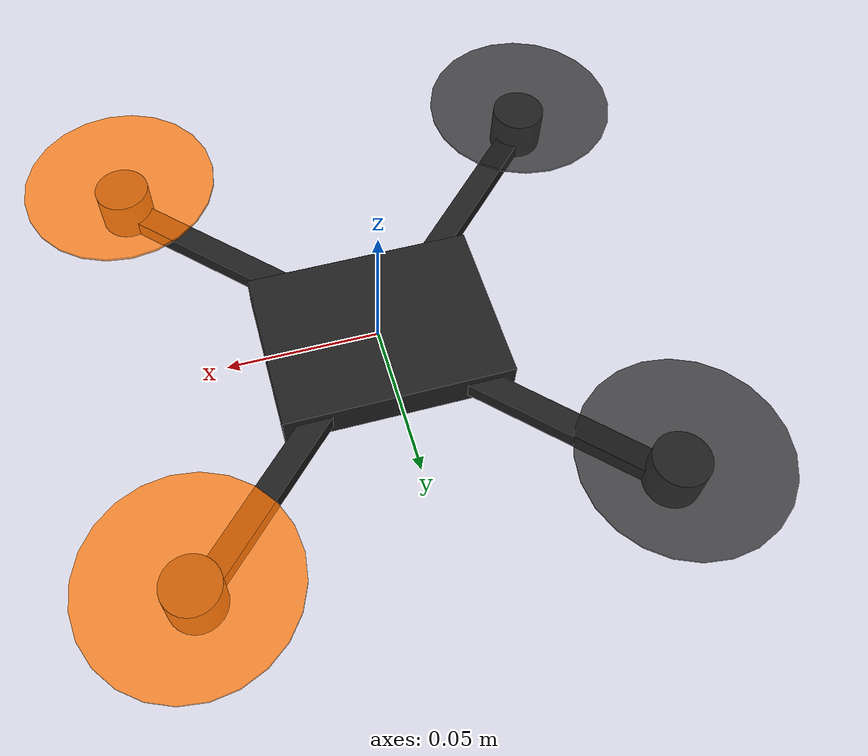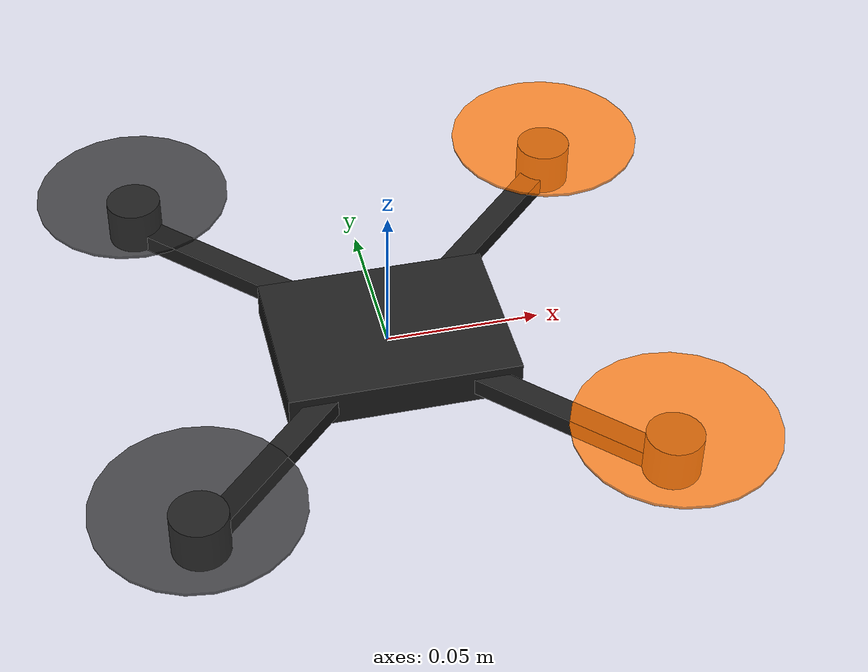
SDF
<?xml version="1.0"?>
<sdf version="1.10">
  <!--
    This is a visual placeholder, not a flight-dynamics model. It is static so
    the first Gazebo launch is deterministic while the controller is developed.
  -->
  <model name="crazyflie">
    <static>true</static>

    <link name="body">
      <visual name="center_deck">
        <geometry>
          <box>
            <size>0.075 0.055 0.012</size>
          </box>
        </geometry>
        <material>
          <ambient>0.08 0.08 0.08 1</ambient>
          <diffuse>0.12 0.12 0.12 1</diffuse>
        </material>
      </visual>

      <visual name="front_left_arm">
        <pose>0.046 0.046 0 0 0 0.785398</pose>
        <geometry><box><size>0.080 0.008 0.006</size></box></geometry>
        <material><diffuse>0.12 0.12 0.12 1</diffuse></material>
      </visual>
      <visual name="front_right_arm">
        <pose>0.046 -0.046 0 0 0 -0.785398</pose>
        <geometry><box><size>0.080 0.008 0.006</size></box></geometry>
        <material><diffuse>0.12 0.12 0.12 1</diffuse></material>
      </visual>
      <visual name="rear_left_arm">
        <pose>-0.046 0.046 0 0 0 -0.785398</pose>
        <geometry><box><size>0.080 0.008 0.006</size></box></geometry>
        <material><diffuse>0.12 0.12 0.12 1</diffuse></material>
      </visual>
      <visual name="rear_right_arm">
        <pose>-0.046 -0.046 0 0 0 0.785398</pose>
        <geometry><box><size>0.080 0.008 0.006</size></box></geometry>
        <material><diffuse>0.12 0.12 0.12 1</diffuse></material>
      </visual>

      <visual name="front_left_motor">
        <pose>0.072 0.072 0.005 0 0 0</pose>
        <geometry><cylinder><radius>0.009</radius><length>0.015</length></cylinder></geometry>
        <material><diffuse>0.25 0.25 0.25 1</diffuse></material>
      </visual>
      <visual name="front_right_motor">
        <pose>0.072 -0.072 0.005 0 0 0</pose>
        <geometry><cylinder><radius>0.009</radius><length>0.015</length></cylinder></geometry>
        <material><diffuse>0.25 0.25 0.25 1</diffuse></material>
      </visual>
      <visual name="rear_left_motor">
        <pose>-0.072 0.072 0.005 0 0 0</pose>
        <geometry><cylinder><radius>0.009</radius><length>0.015</length></cylinder></geometry>
        <material><diffuse>0.25 0.25 0.25 1</diffuse></material>
      </visual>
      <visual name="rear_right_motor">
        <pose>-0.072 -0.072 0.005 0 0 0</pose>
        <geometry><cylinder><radius>0.009</radius><length>0.015</length></cylinder></geometry>
        <material><diffuse>0.25 0.25 0.25 1</diffuse></material>
      </visual>

      <visual name="front_left_propeller">
        <pose>0.072 0.072 0.015 0 0 0</pose>
        <geometry><cylinder><radius>0.032</radius><length>0.001</length></cylinder></geometry>
        <material><diffuse>1 0.45 0 0.75</diffuse></material>
      </visual>
      <visual name="front_right_propeller">
        <pose>0.072 -0.072 0.015 0 0 0</pose>
        <geometry><cylinder><radius>0.032</radius><length>0.001</length></cylinder></geometry>
        <material><diffuse>1 0.45 0 0.75</diffuse></material>
      </visual>
      <visual name="rear_left_propeller">
        <pose>-0.072 0.072 0.015 0 0 0</pose>
        <geometry><cylinder><radius>0.032</radius><length>0.001</length></cylinder></geometry>
        <material><diffuse>0.12 0.12 0.12 0.75</diffuse></material>
      </visual>
      <visual name="rear_right_propeller">
        <pose>-0.072 -0.072 0.015 0 0 0</pose>
        <geometry><cylinder><radius>0.032</radius><length>0.001</length></cylinder></geometry>
        <material><diffuse>0.12 0.12 0.12 0.75</diffuse></material>
      </visual>
    </link>
  </model>
</sdf>
